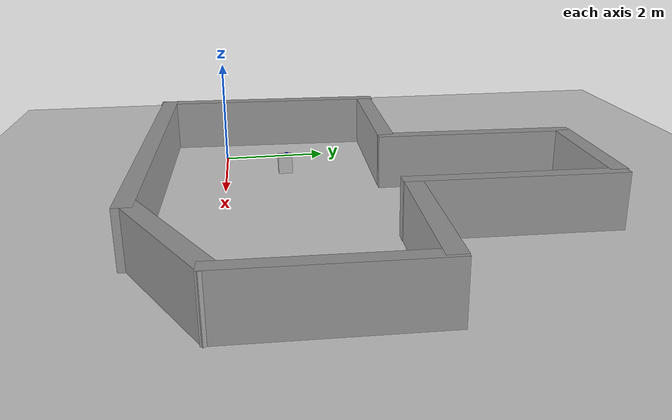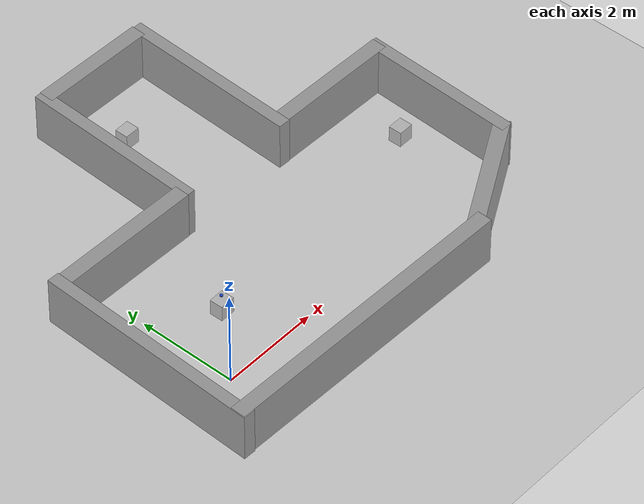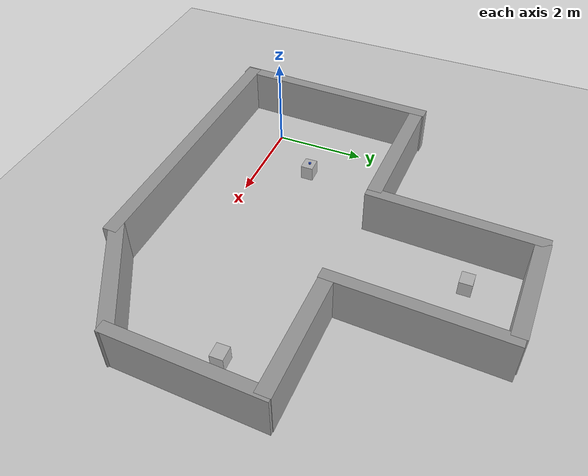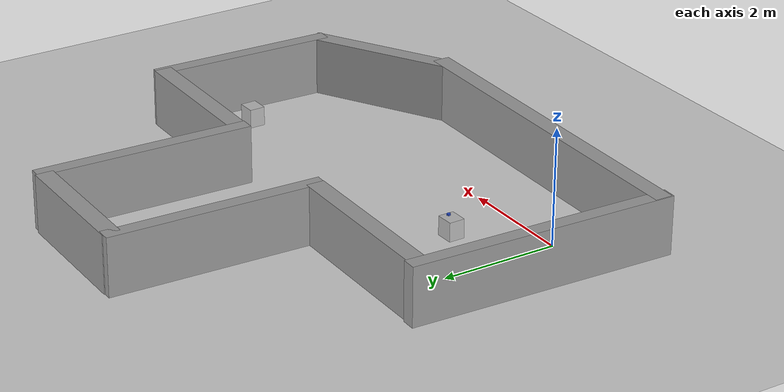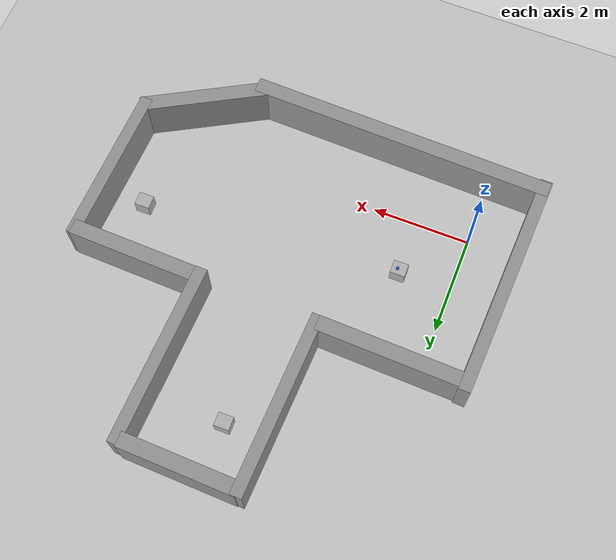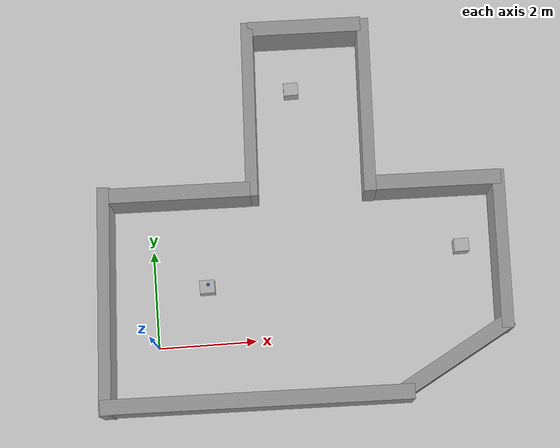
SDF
<sdf version="1.6">
 <world name="default">
  <light name="sun" type="directional">
   <pose>0 0 10 0 -0 0</pose>
   <diffuse>0.8 0.8 0.8 1</diffuse>
   <specular>0.2 0.2 0.2 1</specular>
   <attenuation>
    <range>1000</range>
    <constant>0.9</constant>
    <linear>0.01</linear>
    <quadratic>0.001</quadratic>
   </attenuation>
   <direction>-0.5 0.1 -0.9</direction>
  </light>
  <gravity>0 0 -9.8</gravity>
  <magnetic_field>6e-06 2.3e-05 -4.2e-05</magnetic_field>
  <atmosphere type="adiabatic"/>
  <physics name="default_physics" default="0" type="ode">
   <max_step_size>0.001</max_step_size>
   <real_time_factor>1</real_time_factor>
   <real_time_update_rate>1000</real_time_update_rate>
  </physics>
  <scene><ambient>0.4 0.4 0.4 1</ambient><background>0.7 0.7 0.7 1</background><shadows>1</shadows></scene>
  <spherical_coordinates>
   <surface_model>EARTH_WGS84</surface_model>
   <latitude_deg>0</latitude_deg>
   <longitude_deg>0</longitude_deg>
   <elevation>0</elevation>
   <heading_deg>0</heading_deg>
  </spherical_coordinates>
  <model name="unit_cylinder_clone">
   <static>1</static>
   <pose>1.09796 1.19333 0.402024 -1e-06 -1e-06 -0.148</pose>
   <link name="link">
    <inertial><mass>1</mass></inertial>
    <collision name="collision">
     <geometry><cylinder><radius>0.0311369</radius><length>0.0255102</length></cylinder></geometry>
    </collision>
    <visual name="visual">
     <geometry><cylinder><radius>0.0311369</radius><length>0.0255102</length></cylinder></geometry>
     <material>
      <script><name>Gazebo/Blue</name><uri>file://media/materials/scripts/gazebo.material</uri></script>
     </material>
    </visual>
   </link>
  </model>
  <model name="unit_box_1_clone_clone">
   <pose>3.43758 6.38059 0.5 3e-06 1e-06 -0.020149</pose>
   <link name="link">
    <inertial>
     <mass>0.1</mass>
     <inertia>
      <ixx>0.166667</ixx>
      <ixy>0</ixy>
      <ixz>0</ixz>
      <iyy>0.166667</iyy>
      <iyz>0</iyz>
      <izz>0.166667</izz>
     </inertia>
    </inertial>
    <collision name="collision"><geometry><box><size>0.0148086 0.01 1</size></box></geometry></collision>
    <visual name="visual">
     <geometry><box><size>2.35661 0.304897 1</size></box></geometry>
     <material>
      <script><name>Gazebo/Grey</name><uri>file://media/materials/scripts/gazebo.material</uri></script>
     </material>
    </visual>
   </link>
  </model>
  <model name="unit_box_clone">
   <pose>3.08136 5.24148 0.18858 1.2e-05 -1.2e-05 0.012413</pose>
   <link name="link">
    <inertial>
     <mass>1</mass>
     <inertia>
      <ixx>0.166667</ixx>
      <ixy>0</ixy>
      <ixz>0</ixz>
      <iyy>0.166667</iyy>
      <iyz>0</iyz>
      <izz>0.166667</izz>
     </inertia>
    </inertial>
    <collision name="collision">
     <geometry><box><size>0.061297 0.054133 0.377159</size></box></geometry>
    </collision>
    <visual name="visual">
     <geometry><box><size>0.306485 0.270666 0.330014</size></box></geometry>
     <material>
      <script>
       <uri>model://tijolos/materials/scripts</uri>
       <uri>model://tijolos/materials/textures</uri>
       <name>Tijolos/Diffuse</name>
      </script>
     </material>
    </visual>
   </link>
  </model>
  <model name="unit_box_2_clone_clone_clone_clone_3_clone">
   <pose>4.60076 4.63096 0.5 -6e-06 -8e-06 -0.035839</pose>
   <link name="link">
    <inertial>
     <mass>1</mass>
     <inertia>
      <ixx>0.166667</ixx>
      <ixy>0</ixy>
      <ixz>0</ixz>
      <iyy>0.166667</iyy>
      <iyz>0</iyz>
      <izz>0.166667</izz>
     </inertia>
    </inertial>
    <collision name="collision"><geometry><box><size>0.01 0.01 1</size></box></geometry></collision>
    <visual name="visual">
     <geometry><box><size>0.246526 3.69295 1</size></box></geometry>
     <material>
      <script><name>Gazebo/Grey</name><uri>file://media/materials/scripts/gazebo.material</uri></script>
     </material>
    </visual>
   </link>
  </model>
  <model name="my_ground_plane">
   <static>1</static>
   <link name="link">
    <visual name="visual">
     <cast_shadows>0</cast_shadows>
     <geometry><plane><normal>0 0 1</normal><size>100 100</size></plane></geometry>
     <material>
      <script>
       <uri>model://my_ground_plane/materials/scripts</uri>
       <uri>model://my_ground_plane/materials/textures</uri>
       <name>MyGroundPlane/Image</name>
      </script>
     </material>
    </visual>
    <collision name="base">
     <geometry><plane><normal>0 0 1</normal><size>100 100</size></plane></geometry>
     <surface><friction><ode><mu>100</mu><mu2>50</mu2></ode></friction></surface>
    </collision>
   </link>
   <pose>-2.16772 3.22069 0 0 -0 0</pose>
  </model>
  <model name="unit_box_2_clone_clone_clone_clone_3_clone_clone">
   <pose>2.18821 4.69741 0.5 1e-06 7e-06 -0.035654</pose>
   <link name="link">
    <inertial>
     <mass>1</mass>
     <inertia>
      <ixx>0.166667</ixx>
      <ixy>0</ixy>
      <ixz>0</ixz>
      <iyy>0.166667</iyy>
      <iyz>0</iyz>
      <izz>0.166667</izz>
     </inertia>
    </inertial>
    <collision name="collision"><geometry><box><size>0.01 0.01 1</size></box></geometry></collision>
    <visual name="visual">
     <geometry><box><size>0.246526 3.69295 1</size></box></geometry>
     <material>
      <script><name>Gazebo/Grey</name><uri>file://media/materials/scripts/gazebo.material</uri></script>
     </material>
    </visual>
   </link>
  </model>
  <model name="unit_box_1_clone_clone_clone">
   <pose>0.591554 3.02881 0.5 0 -3e-06 -0.020137</pose>
   <link name="link">
    <inertial>
     <mass>0.1</mass>
     <inertia>
      <ixx>0.166667</ixx>
      <ixy>0</ixy>
      <ixz>0</ixz>
      <iyy>0.166667</iyy>
      <iyz>0</iyz>
      <izz>0.166667</izz>
     </inertia>
    </inertial>
    <collision name="collision"><geometry><box><size>0.013591 0.01 1</size></box></geometry></collision>
    <visual name="visual">
     <geometry><box><size>3.00502 0.304897 1</size></box></geometry>
     <material>
      <script><name>Gazebo/Grey</name><uri>file://media/materials/scripts/gazebo.material</uri></script>
     </material>
    </visual>
   </link>
  </model>
  <model name="unit_box_clone_clone">
   <pose>6.35626 1.6503 0.18858 -3e-06 3e-06 0.012931</pose>
   <link name="link">
    <inertial>
     <mass>1</mass>
     <inertia>
      <ixx>0.166667</ixx>
      <ixy>0</ixy>
      <ixz>0</ixz>
      <iyy>0.166667</iyy>
      <iyz>0</iyz>
      <izz>0.166667</izz>
     </inertia>
    </inertial>
    <collision name="collision">
     <geometry><box><size>0.061297 0.054133 0.377159</size></box></geometry>
    </collision>
    <visual name="visual">
     <geometry><box><size>0.306485 0.270666 0.330014</size></box></geometry>
     <material>
      <script>
       <uri>model://tijolos/materials/scripts</uri>
       <uri>model://tijolos/materials/textures</uri>
       <name>Tijolos/Diffuse</name>
      </script>
     </material>
    </visual>
   </link>
  </model>
  <model name="unit_box_1_clone_clone_clone_0">
   <pose>5.90856 2.91999 0.5 4e-06 5e-06 -0.02012</pose>
   <link name="link">
    <inertial>
     <mass>0.1</mass>
     <inertia>
      <ixx>0.166667</ixx>
      <ixy>0</ixy>
      <ixz>0</ixz>
      <iyy>0.166667</iyy>
      <iyz>0</iyz>
      <izz>0.166667</izz>
     </inertia>
    </inertial>
    <collision name="collision"><geometry><box><size>0.01 0.01 1</size></box></geometry></collision>
    <visual name="visual">
     <geometry><box><size>2.6157 0.304897 1</size></box></geometry>
     <material>
      <script><name>Gazebo/Grey</name><uri>file://media/materials/scripts/gazebo.material</uri></script>
     </material>
    </visual>
   </link>
  </model>
  <model name="unit_box_2_clone_clone_clone_clone_3_clone_clone_0">
   <pose>7.10224 1.41637 0.5 -8e-06 -6e-06 -0.036127</pose>
   <link name="link">
    <inertial>
     <mass>1</mass>
     <inertia>
      <ixx>0.166667</ixx>
      <ixy>0</ixy>
      <ixz>0</ixz>
      <iyy>0.166667</iyy>
      <iyz>0</iyz>
      <izz>0.166667</izz>
     </inertia>
    </inertial>
    <collision name="collision"><geometry><box><size>0.01 0.00577309 1</size></box></geometry></collision>
    <visual name="visual">
     <geometry><box><size>0.246526 3.24534 1</size></box></geometry>
     <material>
      <script><name>Gazebo/Grey</name><uri>file://media/materials/scripts/gazebo.material</uri></script>
     </material>
    </visual>
   </link>
  </model>
  <model name="unit_box_1_clone_clone_clone_1">
   <pose>5.981 -0.677381 0.49999 -7e-06 -3e-06 0.511362</pose>
   <link name="link">
    <inertial>
     <mass>0.1</mass>
     <inertia>
      <ixx>0.166667</ixx>
      <ixy>0</ixy>
      <ixz>0</ixz>
      <iyy>0.166667</iyy>
      <iyz>0</iyz>
      <izz>0.166667</izz>
     </inertia>
    </inertial>
    <collision name="collision"><geometry><box><size>0.01 0.01 1</size></box></geometry></collision>
    <visual name="visual">
     <geometry><box><size>2.6157 0.304897 1</size></box></geometry>
     <material>
      <script><name>Gazebo/Grey</name><uri>file://media/materials/scripts/gazebo.material</uri></script>
     </material>
    </visual>
   </link>
  </model>
  <model name="unit_box_1_clone_clone_clone_2">
   <pose>1.96474 -1.26326 0.5 -8e-06 -0 -0.020167</pose>
   <link name="link">
    <inertial>
     <mass>0.1</mass>
     <inertia>
      <ixx>0.166667</ixx>
      <ixy>0</ixy>
      <ixz>0</ixz>
      <iyy>0.166667</iyy>
      <iyz>0</iyz>
      <izz>0.166667</izz>
     </inertia>
    </inertial>
    <collision name="collision"><geometry><box><size>0.25376 0.01 1</size></box></geometry></collision>
    <visual name="visual">
     <geometry><box><size>6.23658 0.304897 1</size></box></geometry>
     <material>
      <script><name>Gazebo/Grey</name><uri>file://media/materials/scripts/gazebo.material</uri></script>
     </material>
    </visual>
   </link>
  </model>
  <model name="unit_box_2_clone_clone_clone_clone_3_clone_clone_0_clone">
   <pose>-0.972765 0.93379 0.5 1e-06 -6e-06 -0.035566</pose>
   <link name="link">
    <inertial>
     <mass>1</mass>
     <inertia>
      <ixx>0.166667</ixx>
      <ixy>0</ixy>
      <ixz>0</ixz>
      <iyy>0.166667</iyy>
      <iyz>0</iyz>
      <izz>0.166667</izz>
     </inertia>
    </inertial>
    <collision name="collision"><geometry><box><size>0.01 0.0175845 1</size></box></geometry></collision>
    <visual name="visual">
     <geometry><box><size>0.246526 4.62187 1</size></box></geometry>
     <material>
      <script><name>Gazebo/Grey</name><uri>file://media/materials/scripts/gazebo.material</uri></script>
     </material>
    </visual>
   </link>
  </model>
  <model name="unit_box_clone_clone_1_clone">
   <pose>1.06998 1.16009 0.18858 0 -0 0.012824</pose>
   <link name="link">
    <inertial>
     <mass>1</mass>
     <inertia>
      <ixx>0.166667</ixx>
      <ixy>0</ixy>
      <ixz>0</ixz>
      <iyy>0.166667</iyy>
      <iyz>0</iyz>
      <izz>0.166667</izz>
     </inertia>
    </inertial>
    <collision name="collision"><geometry><box><size>9.7e-05 3.3e-05 0.377159</size></box></geometry></collision>
    <visual name="visual">
     <geometry><box><size>0.306485 0.270666 0.330014</size></box></geometry>
     <material>
      <script>
       <uri>model://tijolos/materials/scripts</uri>
       <uri>model://tijolos/materials/textures</uri>
       <name>Tijolos/Diffuse</name>
      </script>
     </material>
    </visual>
   </link>
  </model>
 </world>
</sdf>
